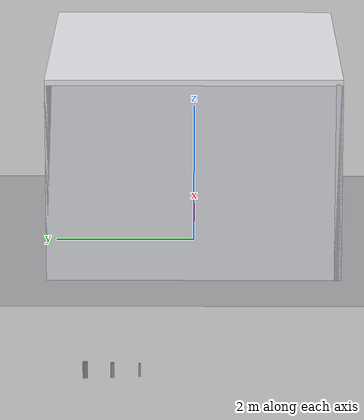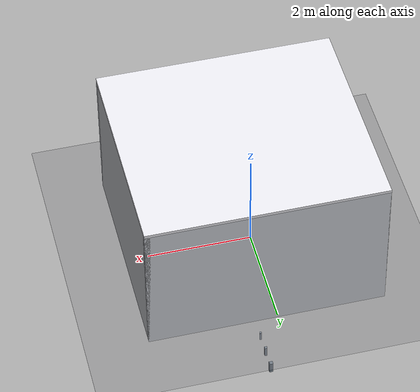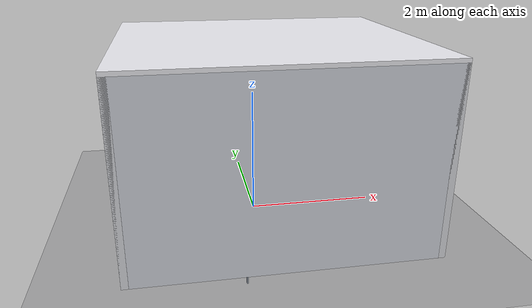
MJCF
<mujoco model="fumehood">
  <compiler angle="radian" autolimits="true" boundmass="0" balanceinertia="true"/>
  <option impratio="10" gravity="0 0 -9.8" integrator="implicitfast" cone="elliptic" jacobian="sparse" noslip_iterations="4">
    <flag multiccd="enable" contact="enable" warmstart="enable"/>
  </option>
  <size njmax="6000" nconmax="6000"/>
  <visual>
    <global offwidth="1280" offheight="720"/>
    <map znear="0.001"/>
    <headlight ambient="0.5 0.5 0.5" diffuse="0.65 0.65 0.65"/>
  </visual>
  <asset>
    <texture name="benchtex" type="2d" builtin="flat" rgb1="0.85 0.86 0.88" width="32" height="32"/>
    <material name="bench" texture="benchtex" reflectance="0.1"/>
    <texture name="floortex" type="2d" builtin="checker" rgb1="0.46 0.46 0.48" rgb2="0.40 0.40 0.42" width="300" height="300"/>
    <material name="floormat" texture="floortex" texrepeat="10 10" reflectance="0.05"/>
  </asset>
  <default>
    <default class="hood">
      <geom contype="8" conaffinity="15" group="0" friction="0.9 0.9 0.001"
            solref="0.02 1" solimp="0.998 0.998 0.001" density="700" rgba="0.92 0.93 0.94 1"/>
    </default>
  </default>
  <worldbody>
    <light name="l_key" pos="0.4 0.5 2.6" dir="0 0 -1" diffuse="0.95 0.95 0.95"/>
    <light name="l_fill" pos="-0.6 -0.7 2.1" dir="0.3 0.3 -1" diffuse="0.5 0.5 0.5"/>
    <light name="l_hood" pos="0.85 0 1.55" dir="0 0 -1" diffuse="0.6 0.6 0.6"/>
    <geom name="floor" type="plane" size="5 5 0.1" pos="0 0 0" material="floormat" contype="8" conaffinity="15"/>
    <geom name="room_wall_back"  class="hood" type="box" pos="-2.0 0 1.4"  size="0.05 2.05 1.4" rgba="0.82 0.83 0.85 1"/>
    <geom name="room_wall_front" class="hood" type="box" pos="2.4 0 1.4"   size="0.05 2.05 1.4" rgba="0.82 0.83 0.85 1"/>
    <geom name="room_wall_left"  class="hood" type="box" pos="0.2 2.0 1.4"  size="2.25 0.05 1.4" rgba="0.80 0.81 0.84 1"/>
    <geom name="room_wall_right" class="hood" type="box" pos="0.2 -2.0 1.4" size="2.25 0.05 1.4" rgba="0.80 0.81 0.84 1"/>
    <geom name="room_ceiling"    class="hood" type="box" pos="0.2 0 2.82"  size="2.25 2.05 0.04" rgba="0.90 0.90 0.92 1"/>
    <!-- lab bench: work surface z=0.72 -->
    <geom name="bench_top" class="hood" type="box" pos="0.95 0 0.70" size="0.45 0.60 0.02" material="bench"/>
    <geom name="bench_body" class="hood" type="box" pos="0.95 0 0.35" size="0.42 0.57 0.33" rgba="0.80 0.81 0.83 1"/>
    <geom name="hood_side_l" class="hood" type="box" pos="0.95 0.45 1.12" size="0.40 0.012 0.40" rgba="0.90 0.91 0.92 1"/>
    <geom name="hood_side_r" class="hood" type="box" pos="0.95 -0.45 1.12" size="0.40 0.012 0.40" rgba="0.90 0.91 0.92 1"/>
    <geom name="hood_back"  class="hood" type="box" pos="1.36 0 1.12" size="0.012 0.46 0.40" rgba="0.88 0.89 0.90 1"/>
    <geom name="hood_top"   class="hood" type="box" pos="0.95 0 1.53" size="0.42 0.46 0.015"/>
    <geom name="hood_frame_l" class="hood" type="box" pos="0.58 0.45 1.12" size="0.02 0.02 0.40"/>
    <geom name="hood_frame_r" class="hood" type="box" pos="0.58 -0.45 1.12" size="0.02 0.02 0.40"/>
    <!-- SASH RAIL (opaque aluminum, sash raised): bottom edge = opening height (clearance
         knob). Arm passes UNDER it; cameras see the interior through the OPEN front. -->
    <body name="sash" mocap="true" pos="0.58 0 1.30">
      <geom name="sash_g" class="hood" type="box" size="0.015 0.44 0.025" rgba="0.62 0.64 0.66 1"/>
    </body>
    <!-- side jambs: mocap, set opening WIDTH -->
    <body name="jamb_l" mocap="true" pos="0.58 0.35 0.92">
      <geom name="jamb_l_g" class="hood" type="box" size="0.012 0.18 0.20" rgba="0.88 0.89 0.90 1"/>
    </body>
    <body name="jamb_r" mocap="true" pos="0.58 -0.35 0.92">
      <geom name="jamb_r_g" class="hood" type="box" size="0.012 0.18 0.20" rgba="0.88 0.89 0.90 1"/>
    </body>
    <!-- in-hood obstacles: VISIBLE upright items (beaker-stand bars) the arm must thread between -->
    <body name="protr_s" mocap="true" pos="0 0.8 -2.0">
      <geom name="protr_s_g" class="hood" type="box" size="0.0175 0.0175 0.10" rgba="0.55 0.6 0.65 1"/>
    </body>
    <body name="protr_m" mocap="true" pos="0 1.2 -2.0">
      <geom name="protr_m_g" class="hood" type="box" size="0.025 0.025 0.11" rgba="0.5 0.55 0.6 1"/>
    </body>
    <body name="protr_l" mocap="true" pos="0 1.6 -2.0">
      <geom name="protr_l_g" class="hood" type="box" size="0.035 0.035 0.12" rgba="0.45 0.5 0.55 1"/>
    </body>
  </worldbody>
</mujoco>
